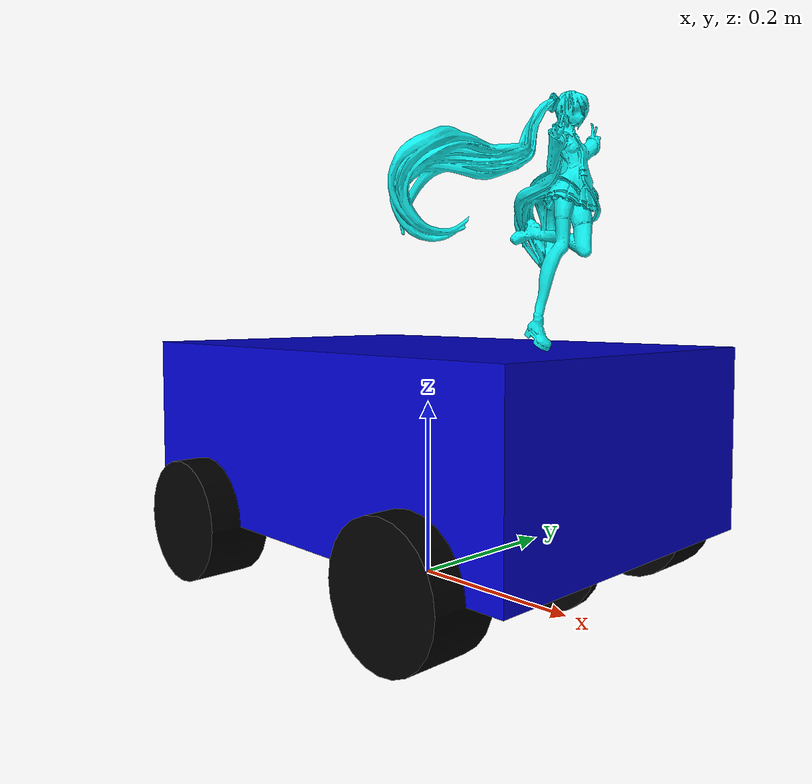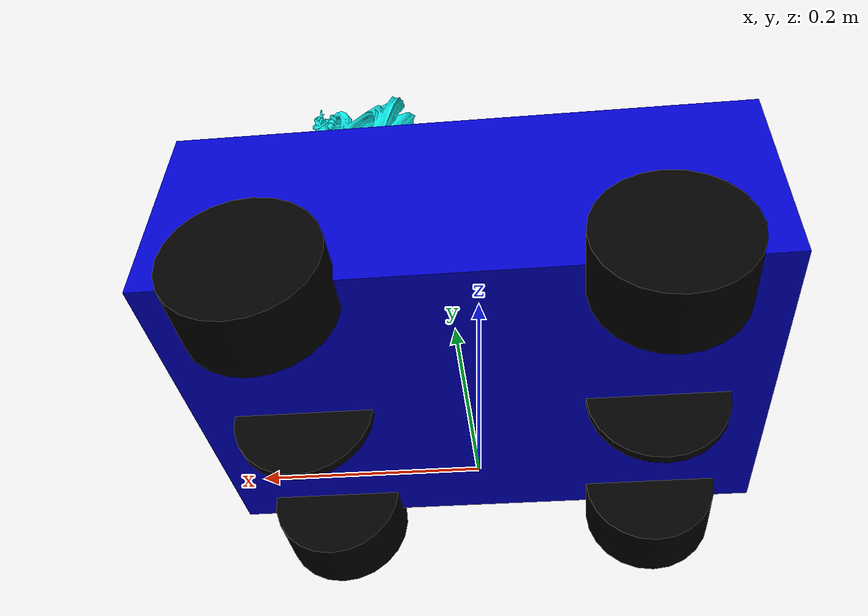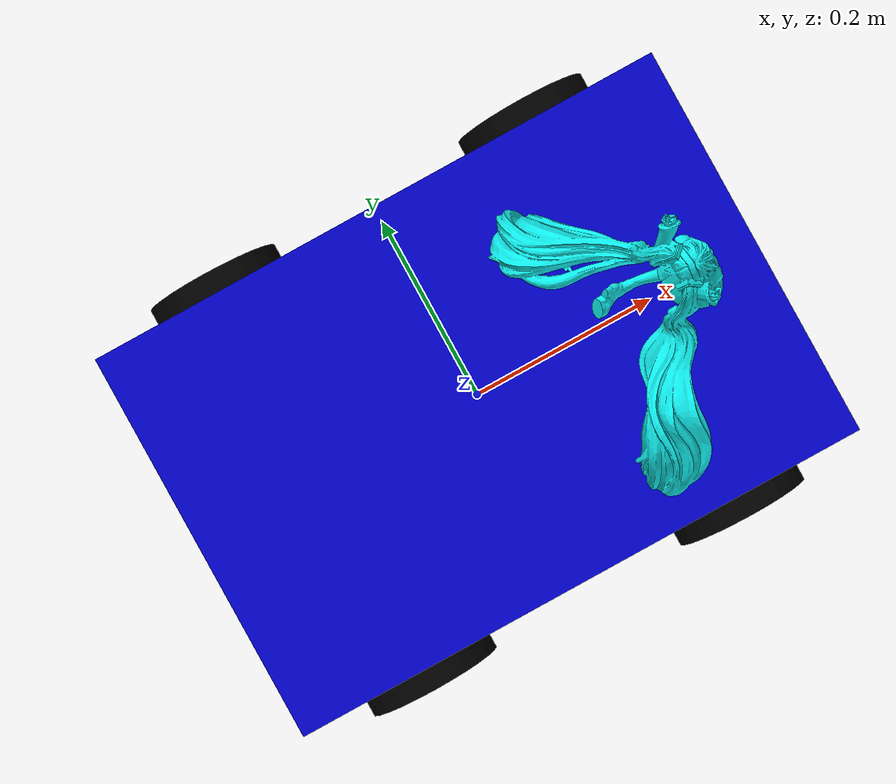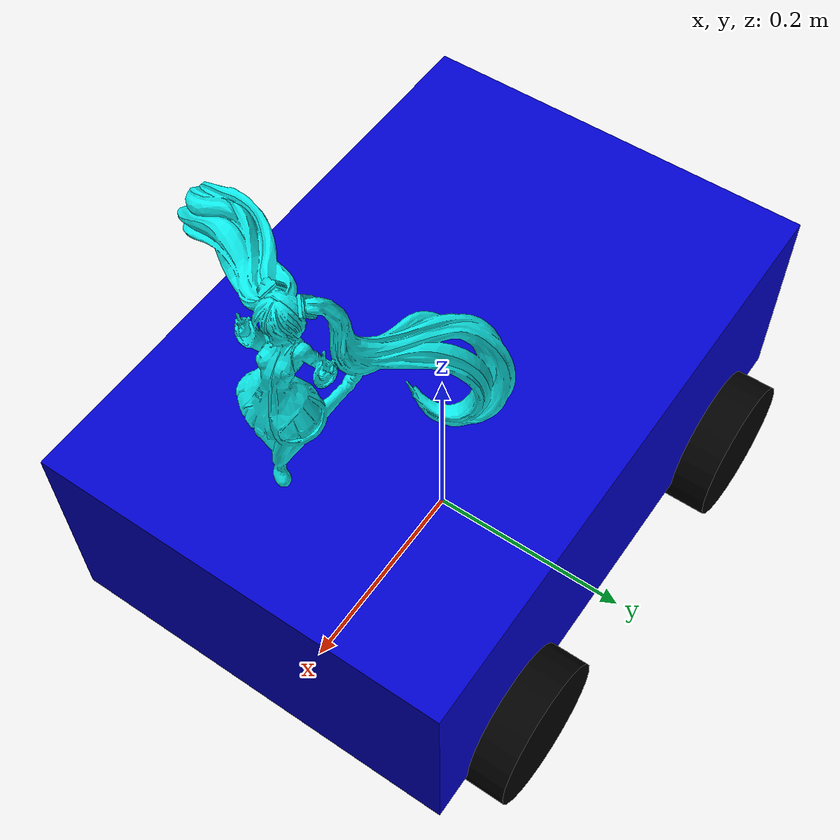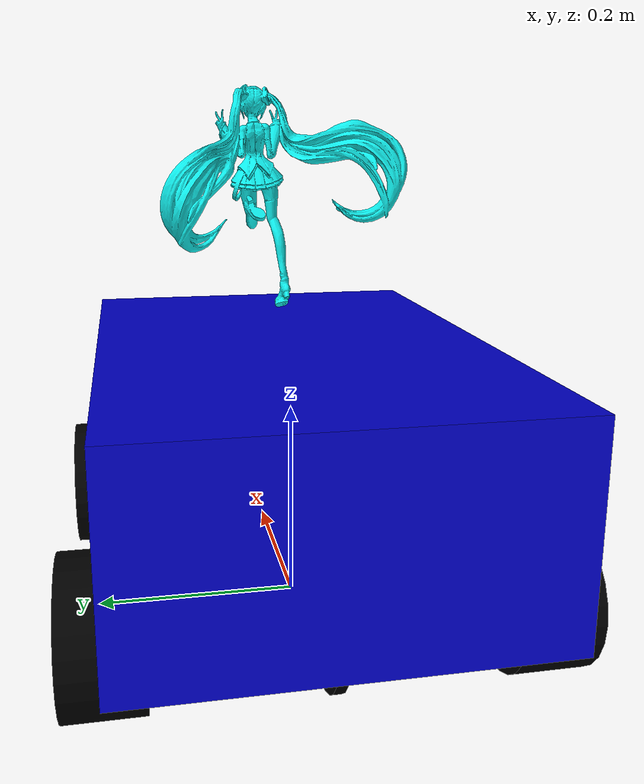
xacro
<?xml version="1.0"?>
<!-- 4 Wheel Robot with front steering and rear drive -->
<robot xmlns:xacro="http://www.ros.org/wiki/xacro" name="avc_car_robot">
  <xacro:arg name="prefix" default="" />

  <xacro:include filename="avc_car_description.urdf.xacro" />

  <!-- Import Rviz colors -->
  <xacro:include filename="avc_car.materials.xacro" />

  <!-- Import avc_car ros2_control description -->
  <xacro:include filename="../ros2_control/avc_car.ros2_control.xacro" />

  <xacro:avc_car prefix="$(arg prefix)" />

  <xacro:avc_car_ros2_control
    name="avc_car" prefix="$(arg prefix)" />

</robot>

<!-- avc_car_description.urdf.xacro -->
<robot xmlns:xacro="http://www.ros.org/wiki/xacro">

  <xacro:macro name="avc_car" params="prefix">

  <!-- Constants for robot dimensions, everything has been changed except mass -->
  <xacro:property name="PI" value="3.1415926535897931"/>
  <xacro:property name="base_mass" value="4.0" /> <!-- arbitrary value for base mass -->
  <xacro:property name="base_width" value="0.38" /><!-- side-to-side distance between wheels -->
  <xacro:property name="base_length" value="0.56" /> <!-- length of car -->
  <xacro:property name="base_height" value="0.20" /> <!-- height of car -->
  <xacro:property name="wheelbase" value="0.343" /> <!-- front-to-back distance between wheels -->
  <xacro:property name="wheel_mass" value="0.34055" /> <!-- arbitrary value for wheel mass -->
  <xacro:property name="wheel_len" value="0.07" /> <!-- thickness of wheel -->
  <xacro:property name="wheel_radius" value="0.0685" /> <!-- radius of wheel -->

  <!-- Base Link -->
  <link name="${prefix}base_link" />

  <link name="laser"/>
  <joint name="base_link_to_laser" type="fixed">
    <origin xyz="0.1 0 0.3" rpy="0 0 ${PI}"/>
    <parent link="base_link"/>
    <child link="laser"/>
  </joint>

  <link name="stereo_camera_center"/>
  <joint name="base_link_to_stereo_center" type="fixed">
    <origin xyz="0.2 0 0.22" rpy="0 0 0"/>
    <parent link="base_link"/>
    <child link="stereo_camera_center"/>
  </joint>

  <link name="camera_frame_left"/>
  <joint name="stereo_center_to_left" type="fixed">
    <origin xyz="0 0.128 0" rpy="0 0 0"/>
    <parent link="stereo_camera_center"/>
    <child link="camera_frame_left"/>
  </joint>

  <link name="camera_frame_right"/>
  <joint name="stereo_center_to_right" type="fixed">
    <origin xyz="0 -0.128 0" rpy="0 0 0"/>
    <parent link="stereo_camera_center"/>
    <child link="camera_frame_right"/>
  </joint>

  <!-- Front-->

  <link name="${prefix}front_indicator">
        <visual>
          <origin xyz="${base_width/2} 0 ${base_height/2}" rpy="0 0 0"/>
          <geometry>
            <mesh filename="package://avc_car/meshes/reducedmiku.stl"/>
          </geometry>
          <material name="miku"/>
        </visual>

    </link>

    <joint name="${prefix}chassis_link_to_front_indicator" type="fixed">
      <parent link="${prefix}chassis_link" />
      <child link="${prefix}front_indicator" />
      <origin xyz="0 0 0" rpy="0 0 0"/>
    </joint>
  <!-- Chassis -->

  <link name="${prefix}chassis_link">
    <collision>
      <origin xyz="0 0 0" rpy="0 0 0"/>
      <geometry>
        <box size="${base_length} ${base_width} ${base_height}"/>
      </geometry>
    </collision>

    <visual>
      <origin xyz="0 0 0" rpy="0 0 0"/>
      <geometry>
        <box size="${base_length} ${base_width} ${base_height}"/>
      </geometry>
      <material name="blue"/>
    </visual>

    <inertial>
      <origin xyz="0 0 0" rpy="0 0 0"/>
      <mass value="${base_mass}"/>
        <inertia
          ixx="0.000270" ixy="0.0" ixz="0.0"
          iyy="0.000270" iyz="0.0"
          izz="0.000426"/>
      </inertial>
    </link>

    <joint name="${prefix}chassis_joint" type="fixed">
      <parent link="${prefix}base_link"/>
      <child link="${prefix}chassis_link"/>
      <origin xyz="0 0 ${base_height/2 + wheel_radius}" rpy="0 0 0"/>
      <axis xyz="0 0 1"/>
      <dynamics damping="0.2"/>
    </joint>

    <!-- rear wheels -->

    <!-- virtual rear wheel -->

    <link name="${prefix}virtual_rear_wheel">
      <visual>
        <origin xyz="0 0 0" rpy="${PI/2} 0 ${PI/2}"/>
        <geometry>
          <cylinder length="0.01" radius="${wheel_radius}"/>
        </geometry>
        <material name="invisible"/>
      </visual>
    </link>

    <joint name="${prefix}virtual_rear_wheel_joint" type="continuous">
      <parent link="${prefix}chassis_link"/>
      <child link="${prefix}virtual_rear_wheel"/>
      <origin xyz="-${wheelbase/2} 0 -${base_height/2}" rpy="0 0 ${PI/2}"/>
      <axis xyz="1 0 0"/>
      <limit effort="100.0" velocity="100.0"/>
      <dynamics damping="0.2"/>
    </joint>

    <!-- rear right wheel -->

    <link name="${prefix}rear_right_wheel">
      <collision>
        <origin xyz="0 0 0" rpy="${PI/2} 0 ${PI/2}"/>
        <geometry>
          <cylinder length="${wheel_len}" radius="${wheel_radius}"/>
        </geometry>
      </collision>

      <visual>
        <origin xyz="0 0 0" rpy="${PI/2} 0 ${PI/2}"/>
        <geometry>
          <cylinder length="${wheel_len}" radius="${wheel_radius}"/>
        </geometry>
        <material name="black"/>
      </visual>

      <inertial>
        <origin xyz="0 0 0" rpy="${PI/2} 0 ${PI/2}"/>
        <mass value="${wheel_mass}"/>
        <inertia
          ixx="0.000270" ixy="0.0" ixz="0.0"
          iyy="0.000270" iyz="0.0"
          izz="0.000426"/>
      </inertial>

    </link>

    <joint name="${prefix}rear_right_wheel_joint" type="continuous">
      <parent link="${prefix}chassis_link"/>
      <child link="${prefix}rear_right_wheel"/>
      <origin xyz="-${wheelbase/2} ${base_width/2} -${base_height/2}" rpy="0 0 ${PI/2}"/>
      <axis xyz="1 0 0"/>
      <limit effort="100.0" velocity="100.0"/>
      <dynamics damping="0.2"/>
      <mimic joint="${prefix}virtual_rear_wheel_joint" multiplier="1.0" offset="0.0"/>
    </joint>

    <!-- rear left wheel -->
    <link name="${prefix}rear_left_wheel">
        <collision>
          <origin xyz="0 0 0" rpy="${PI/2} 0 ${PI/2}"/>
          <geometry>
            <cylinder length="${wheel_len}" radius="${wheel_radius}"/>
          </geometry>
        </collision>

        <visual>
          <origin xyz="0 0 0" rpy="${PI/2} 0 ${PI/2}"/>
          <geometry>
            <cylinder length="${wheel_len}" radius="${wheel_radius}"/>
          </geometry>
          <material name="black"/>
        </visual>

        <inertial>
          <origin xyz="0 0 0" rpy="${PI/2} 0 ${PI/2}"/>
          <mass value="${wheel_mass}"/>
          <inertia
            ixx="0.000270" ixy="0.0" ixz="0.0"
            iyy="0.000270" iyz="0.0"
            izz="0.000426"/>
        </inertial>

    </link>

    <joint name="${prefix}rear_left_wheel_joint" type="continuous">
      <parent link="${prefix}chassis_link" />
      <child link="${prefix}rear_left_wheel" />
      <origin xyz="-${wheelbase/2} -${base_width/2} -${base_height/2}" rpy="0 0 ${PI/2}"/>
      <axis xyz="1 0 0"/>
      <limit effort="100.0" velocity="100.0"/>
      <dynamics damping="0.2"/>
      <mimic joint="${prefix}virtual_rear_wheel_joint" multiplier="1.0" offset="0.0"/>
    </joint>

    <!-- front wheels -->

    <!-- virtual front wheel -->

    <link name="${prefix}virtual_front_wheel">
      <visual>
        <origin xyz="0 0 0" rpy="${PI/2} 0 ${PI/2}"/>
        <geometry>
          <cylinder length="0.01" radius="${wheel_radius}"/>
        </geometry>
        <material name="invisible"/>
      </visual>
    </link>

    <joint name="${prefix}virtual_front_wheel_joint" type="revolute">
      <parent link="${prefix}chassis_link"/>
      <child link="${prefix}virtual_front_wheel"/>
      <origin xyz="${wheelbase/2} 0 -${base_height/2}" rpy="0 0 ${PI/2}"/>
      <axis xyz="0 0 1"/>
      <limit lower="-0.4" upper="0.4" effort="100.0" velocity="10.0"/>
      <dynamics damping="0.2"/>
    </joint>

    <!-- front right wheel -->

    <link name="${prefix}front_right_wheel">

      <collision>
        <origin xyz="0 0 0" rpy="${PI/2} 0 ${PI/2}"/>
        <geometry>
          <cylinder length="${wheel_len}" radius="${wheel_radius}"/>
        </geometry>
      </collision>

      <visual>
        <origin xyz="0 0 0" rpy="${PI/2} 0 ${PI/2}"/>
        <geometry>
          <cylinder length="${wheel_len}" radius="${wheel_radius}"/>
        </geometry>
        <material name="black"/>
      </visual>

      <inertial>
        <origin xyz="0 0 0" rpy="${PI/2} 0 ${PI/2}"/>
        <mass value="${wheel_mass}"/>
        <inertia
          ixx="0.000270" ixy="0.0" ixz="0.0"
          iyy="0.000270" iyz="0.0"
          izz="0.000426"/>
      </inertial>
    </link>

    <joint name="${prefix}front_right_wheel_joint" type="revolute">
      <parent link="${prefix}chassis_link" />
      <child link="${prefix}front_right_wheel" />
      <origin xyz="${wheelbase/2} ${base_width/2} -${base_height/2}" rpy="0 0 ${PI/2}"/>
      <axis xyz="0 0 1"/>
      <limit lower="-0.4" upper="0.4" effort="100.0" velocity="10.0"/>
      <dynamics damping="0.2"/>
      <mimic joint="${prefix}virtual_front_wheel_joint" multiplier="1.0" offset="0.0"/>
    </joint>

    <!-- front left steering -->

    <link name="${prefix}front_left_wheel">
      <collision>
        <origin xyz="0 0 0" rpy="${PI/2} 0 ${PI/2}"/>
        <geometry>
          <cylinder length="${wheel_len}" radius="${wheel_radius}"/>
        </geometry>
      </collision>

      <visual>
        <origin xyz="0 0 0" rpy="${PI/2} 0 ${PI/2}"/>
        <geometry>
          <cylinder length="${wheel_len}" radius="${wheel_radius}"/>
        </geometry>
        <material name="black"/>
      </visual>

      <inertial>
        <origin xyz="0 0 0" rpy="${PI/2} 0 ${PI/2}"/>
        <mass value="${wheel_mass}"/>
        <inertia
          ixx="0.000270" ixy="0.0" ixz="0.0"
          iyy="0.000270" iyz="0.0"
          izz="0.000426"/>
      </inertial>

    </link>

    <joint name="${prefix}front_left_wheel_joint" type="revolute">
      <parent link="${prefix}chassis_link" />
      <child link="${prefix}front_left_wheel" />
      <origin xyz="${wheelbase/2} -${base_width/2} -${base_height/2}" rpy="0 0 ${PI/2}"/>
      <axis xyz="0 0 1"/>
      <limit lower="-0.4" upper="0.4" effort="100.0" velocity="10.0"/>
      <dynamics damping="0.2"/>
      <mimic joint="${prefix}virtual_front_wheel_joint" multiplier="1.0" offset="0.0"/>
    </joint>

  </xacro:macro>

</robot>

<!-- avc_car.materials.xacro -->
<!--
Copied from ROS1 example:
https://github.com/ros-simulation/gazebo_ros_demos/blob/kinetic-devel/rrbot_description/urdf/materials.xacro
-->
<robot>

  <material name="black">
    <color rgba="0.0 0.0 0.0 1.0"/>
  </material>

  <material name="blue">
    <color rgba="0.0 0.0 0.8 1.0"/>
  </material>

  <material name="green">
    <color rgba="0.0 0.8 0.0 1.0"/>
  </material>

  <material name="grey">
    <color rgba="0.2 0.2 0.2 1.0"/>
  </material>

  <material name="miku">
    <color rgba="0.055 0.918 0.914 1.0"/>
  </material>
  <material name="pink">
    <color rgba="0.94 0.05 0.537 1.0"/>
  </material>

  <material name="orange">
    <color rgba="${255/255} ${108/255} ${10/255} 1.0"/>
  </material>

  <material name="brown">
    <color rgba="${222/255} ${207/255} ${195/255} 1.0"/>
  </material>

  <material name="red">
    <color rgba="0.8 0.0 0.0 1.0"/>
  </material>

  <material name="white">
    <color rgba="1.0 1.0 1.0 1.0"/>
  </material>

  <material name="invisible">
    <color rgba="0.0 0.0 0.0 0.0"/>
  </material>

</robot>
